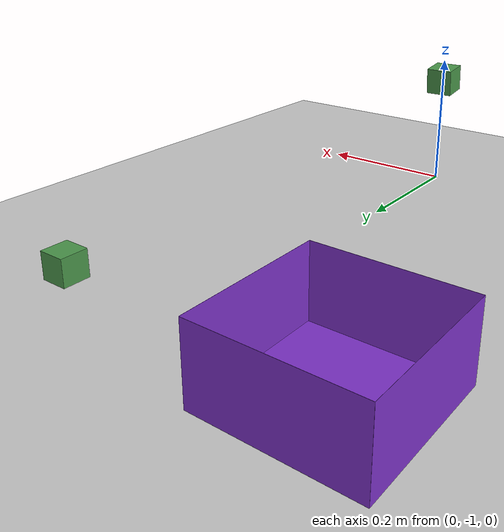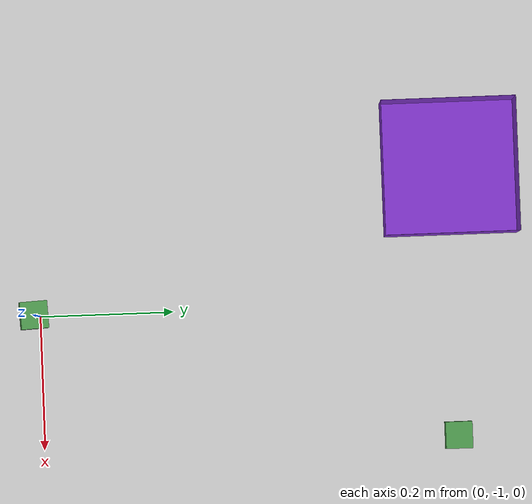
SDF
<sdf version='1.9'>
  <world name='empty'>
    <physics name='1ms' type='ignored'>
      <max_step_size>0.001</max_step_size>
      <real_time_factor>1</real_time_factor>
      <real_time_update_rate>1000</real_time_update_rate>
    </physics>
    <plugin name='gz::sim::systems::Physics' filename='ignition-gazebo-physics-system'/>
    <plugin name='gz::sim::systems::UserCommands' filename='ignition-gazebo-user-commands-system'/>
    <plugin name='gz::sim::systems::SceneBroadcaster' filename='ignition-gazebo-scene-broadcaster-system'/>
    <plugin name='gz::sim::systems::Contact' filename='ignition-gazebo-contact-system'/>
    <plugin name='gz::sim::systems::Sensors' filename='ignition-gazebo-sensors-system'>
      <render_engine>ogre2</render_engine>
    </plugin>
    <gravity>0 0 -9.8</gravity>
    <magnetic_field>6e-06 2.3e-05 -4.2e-05</magnetic_field>
    <atmosphere type='adiabatic'/>
    <scene>
      <ambient>0.4 0.4 0.4 1</ambient>
      <background>0.7 0.7 0.7 1</background>
      <shadows>true</shadows>
    </scene>
    <model name='ground_plane'>
      <static>true</static>
      <link name='link'>
        <collision name='collision'>
          <geometry>
            <plane>
              <normal>0 0 1</normal>
              <size>100 100</size>
            </plane>
          </geometry>
          <surface>
            <friction>
              <ode/>
            </friction>
            <bounce/>
            <contact/>
          </surface>
        </collision>
        <visual name='visual'>
          <geometry>
            <plane>
              <normal>0 0 1</normal>
              <size>100 100</size>
            </plane>
          </geometry>
          <material>
            <ambient>0.8 0.8 0.8 1</ambient>
            <diffuse>0.8 0.8 0.8 1</diffuse>
            <specular>0.8 0.8 0.8 1</specular>
          </material>
        </visual>
        <pose>0 0 0 0 -0 0</pose>
        <inertial>
          <pose>0 0 0 0 -0 0</pose>
          <mass>1</mass>
          <inertia>
            <ixx>1</ixx>
            <ixy>0</ixy>
            <ixz>0</ixz>
            <iyy>1</iyy>
            <iyz>0</iyz>
            <izz>1</izz>
          </inertia>
        </inertial>
        <enable_wind>false</enable_wind>
      </link>
      <pose>0 0 0 0 -0 0</pose>
      <self_collide>false</self_collide>
    </model>
    <model name="open_box">
      <pose>-0.2 -0.38 0 0 -0 0</pose>
      <static>true</static>

      <!-- Base -->
      <link name="base_link">
        <visual name="base_vis">
          <pose>0 0 0 0 0 0</pose>
          <geometry>
            <box><size>0.2 0.2 0.0002</size></box>
          </geometry>
          <material>
            <ambient>0.5 0.2 0.8 1.0</ambient>
            <diffuse>0.5 0.2 0.8 1.0</diffuse>
          </material>
        </visual>
        <collision name="base_col">
          <geometry>
            <box><size>0.2 0.2 0.0002</size></box>
          </geometry>
        </collision>
        <inertial>
          <mass>0.01</mass>
          <inertia>
            <ixx>1e-6</ixx><iyy>1e-6</iyy><izz>1e-6</izz>
            <ixy>0</ixy><ixz>0</ixz><iyz>0</iyz>
          </inertia>
        </inertial>
      </link>

      <!-- Left -->
      <link name="left_link">
        <pose>0 -0.1 0.05 1.57 0 0</pose>
        <visual name="left_vis">
          <geometry>
            <box><size>0.2 0.1 0.0002</size></box>
          </geometry>
          <material>
            <ambient>0.5 0.2 0.8 1.0</ambient>
            <diffuse>0.5 0.2 0.8 1.0</diffuse>
          </material>
        </visual>
        <collision name="left_col">
          <geometry>
            <box><size>0.2 0.1 0.0002</size></box>
          </geometry>
        </collision>
        <inertial>
          <mass>0.01</mass>
          <inertia>
            <ixx>1e-6</ixx><iyy>1e-6</iyy><izz>1e-6</izz>
            <ixy>0</ixy><ixz>0</ixz><iyz>0</iyz>
          </inertia>
        </inertial>
      </link>

      <joint name="box_left" type="fixed">
        <parent>base_link</parent>
        <child>left_link</child>
        <pose>0 -0.1 0.05 0 0 0</pose>
      </joint>

      <!-- Right -->
      <link name="right_link">
        <pose>0 0.1 0.05 1.57 0 0</pose>
        <visual name="right_vis">
          <geometry>
            <box><size>0.2 0.1 0.0002</size></box>
          </geometry>
          <material>
            <ambient>0.5 0.2 0.8 1.0</ambient>
            <diffuse>0.5 0.2 0.8 1.0</diffuse>
          </material>
        </visual>
        <collision name="right_col">
          <geometry>
            <box><size>0.2 0.1 0.0002</size></box>
          </geometry>
        </collision>
        <inertial>
          <mass>0.01</mass>
          <inertia>
            <ixx>1e-6</ixx><iyy>1e-6</iyy><izz>1e-6</izz>
            <ixy>0</ixy><ixz>0</ixz><iyz>0</iyz>
          </inertia>
        </inertial>
      </link>

      <joint name="box_right" type="fixed">
        <parent>base_link</parent>
        <child>right_link</child>
        <pose>0 0.1 0.05 0 0 0</pose>
      </joint>

      <!-- Front -->
      <link name="front_link">
        <pose>0.1 0 0.05 0 1.57 0</pose>
        <visual name="front_vis">
          <geometry>
            <box><size>0.1 0.2 0.0002</size></box>
          </geometry>
          <material>
            <ambient>0.5 0.2 0.8 1.0</ambient>
            <diffuse>0.5 0.2 0.8 1.0</diffuse>
          </material>
        </visual>
        <collision name="front_col">
          <geometry>
            <box><size>0.1 0.2 0.0002</size></box>
          </geometry>
        </collision>
        <inertial>
          <mass>0.01</mass>
          <inertia>
            <ixx>1e-6</ixx><iyy>1e-6</iyy><izz>1e-6</izz>
            <ixy>0</ixy><ixz>0</ixz><iyz>0</iyz>
          </inertia>
        </inertial>
      </link>

      <joint name="box_front" type="fixed">
        <parent>base_link</parent>
        <child>front_link</child>
        <pose>0.1 0 0.05 0 0 0</pose>
      </joint>

      <!-- Back -->
      <link name="back_link">
        <pose>-0.1 0 0.05 0 1.57 0</pose>
        <visual name="back_vis">
          <geometry>
            <box><size>0.1 0.2 0.0002</size></box>
          </geometry>
          <material>
            <ambient>0.5 0.2 0.8 1.0</ambient>
            <diffuse>0.5 0.2 0.8 1.0</diffuse>
          </material>
        </visual>
        <collision name="back_col">
          <geometry>
            <box><size>0.1 0.2 0.0002</size></box>
          </geometry>
        </collision>
        <inertial>
          <mass>0.01</mass>
          <inertia>
            <ixx>1e-6</ixx><iyy>1e-6</iyy><izz>1e-6</izz>
            <ixy>0</ixy><ixz>0</ixz><iyz>0</iyz>
          </inertia>
        </inertial>
      </link>

      <joint name="box_back" type="fixed">
        <parent>base_link</parent>
        <child>back_link</child>
        <pose>-0.1 0 0.05 0 0 0</pose>
      </joint>
    </model>

    <model name="grabbable_box">
      <pose>0.2 -0.38 0.02 0 0 0</pose>
      <static>false</static>
      <link name="box_link">
        <visual name="box_vis">
          <geometry>
            <box>
              <size>0.04 0.04 0.04</size>  <!-- small cube -->
            </box>
          </geometry>
          <material>
            <ambient>0.3 0.6 0.3 1.0</ambient>
            <diffuse>0.3 0.6 0.3 1.0</diffuse>
          </material>
        </visual>
        <collision name="box_col">
          <geometry>
            <box>
              <size>0.04 0.04 0.04</size>
            </box>
          </geometry>
          <surface>
            <friction>
              <ode>
                <mu>15.0</mu>
                <mu2>15.0</mu2>
              </ode>
            </friction>
            <contact>
              <ode>
                <kp>100000.0</kp>
                <kd>100.0</kd>
              </ode>
            </contact>
          </surface>
        </collision>
        <inertial>
          <mass>0.01</mass>
          <inertia>
            <ixx>1e-6</ixx><iyy>1e-6</iyy><izz>1e-6</izz>
            <ixy>0</ixy><ixz>0</ixz><iyz>0</iyz>
          </inertia>
        </inertial>
        <velocity_decay>
          <linear>0.8</linear>
          <angular>2.0</angular>
        </velocity_decay>
      </link>
    </model>

    <model name="cam_model">
      <pose>0 -1.0 0.17 0 0.1 1.62</pose>
      <static>true</static>
      <link name="cam_link">
      <visual name="box_vis">
          <geometry>
            <box>
              <size>0.04 0.04 0.04</size>  <!-- small cube -->
            </box>
          </geometry>
          <material>
            <ambient>0.3 0.6 0.3 1.0</ambient>
            <diffuse>0.3 0.6 0.3 1.0</diffuse>
          </material>
        </visual>

        <sensor name="camera" type="camera">
                <camera>
                    <horizontal_fov>1.396</horizontal_fov>
                    <image>
                        <width>5400</width>
                        <height>1920</height>
                    </image>
                    <clip>
                        <near>0.5</near>
                        <far>15</far>
                    </clip>
                    <camera_info_topic>camera/camera_info</camera_info_topic>
                </camera>
                <always_on>1</always_on>
                <update_rate>30</update_rate>
                <visualize>true</visualize>
                <topic>camera/image_raw</topic>
        </sensor>
      </link>
    </model>

    <light name='sun' type='directional'>
      <pose>0 0 10 0 -0 0</pose>
      <cast_shadows>true</cast_shadows>
      <intensity>1</intensity>
      <direction>-0.5 0.1 -0.9</direction>
      <diffuse>0.8 0.8 0.8 1</diffuse>
      <specular>0.2 0.2 0.2 1</specular>
      <attenuation>
        <range>1000</range>
        <linear>0.01</linear>
        <constant>0.90000000000000002</constant>
        <quadratic>0.001</quadratic>
      </attenuation>
      <spot>
        <inner_angle>0</inner_angle>
        <outer_angle>0</outer_angle>
        <falloff>0</falloff>
      </spot>
    </light>
  </world>
</sdf>
